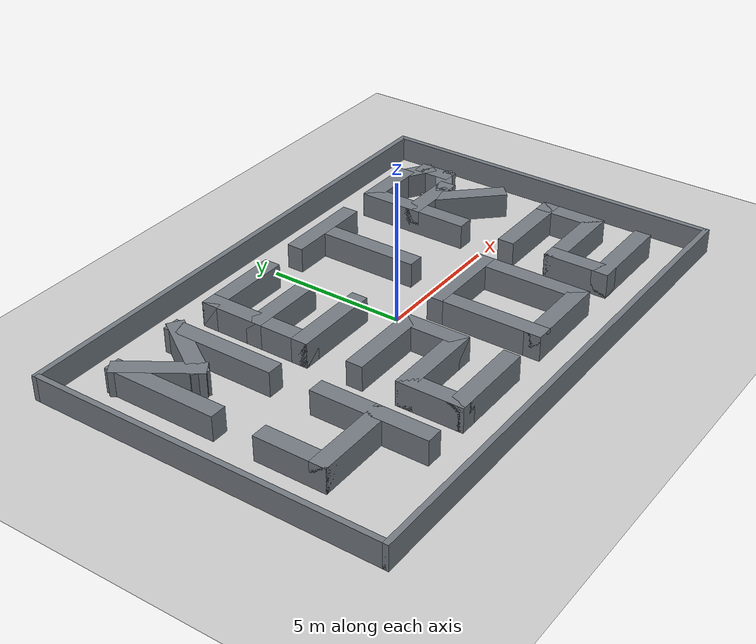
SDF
<?xml version='1.0' encoding='utf-8'?>
<sdf version="1.7">
  <world name="default">
    <light name="sun" type="directional">
      <cast_shadows>1</cast_shadows>
      <pose>0 0 10 0 -0 0</pose>
      <diffuse>0.8 0.8 0.8 1</diffuse>
      <specular>0.2 0.2 0.2 1</specular>
      <attenuation>
        <range>1000</range>
        <constant>0.9</constant>
        <linear>0.01</linear>
        <quadratic>0.001</quadratic>
      </attenuation>
      <direction>-0.5 0.1 -0.9</direction>
      <spot>
        <inner_angle>0</inner_angle>
        <outer_angle>0</outer_angle>
        <falloff>0</falloff>
      </spot>
    </light>
    <model name="ground_plane">
      <static>1</static>
      <link name="link">
        <collision name="collision">
          <geometry>
            <plane>
              <normal>0 0 1</normal>
              <size>100 100</size>
            </plane>
          </geometry>
          <surface>
            <contact>
              <collide_bitmask>65535</collide_bitmask>
              <ode />
            </contact>
            <friction>
              <ode>
                <mu>100</mu>
                <mu2>50</mu2>
              </ode>
              <torsional>
                <ode />
              </torsional>
            </friction>
            <bounce />
          </surface>
          <max_contacts>10</max_contacts>
        </collision>
        <visual name="visual">
          <cast_shadows>0</cast_shadows>
          <geometry>
            <plane>
              <normal>0 0 1</normal>
              <size>100 100</size>
            </plane>
          </geometry>
          <material>
            <script>
              <uri>file://media/materials/scripts/gazebo.material</uri>
              <name>Gazebo/Grey</name>
            </script>
          </material>
        </visual>
        <self_collide>0</self_collide>
        <enable_wind>0</enable_wind>
        <kinematic>0</kinematic>
      </link>
    </model>
    <gravity>0 0 -9.8</gravity>
    <magnetic_field>6e-06 2.3e-05 -4.2e-05</magnetic_field>
    <atmosphere type="adiabatic" />
    <physics type="ode">
      <max_step_size>0.001</max_step_size>
      <real_time_factor>1</real_time_factor>
      <real_time_update_rate>1000</real_time_update_rate>
    </physics>
    <scene>
      <ambient>0.4 0.4 0.4 1</ambient>
      <background>0.7 0.7 0.7 1</background>
      <shadows>1</shadows>
    </scene>
    <audio>
      <device>default</device>
    </audio>
    <wind />
    <spherical_coordinates>
      <surface_model>EARTH_WGS84</surface_model>
      <latitude_deg>0</latitude_deg>
      <longitude_deg>0</longitude_deg>
      <elevation>0</elevation>
      <heading_deg>0</heading_deg>
    </spherical_coordinates>
    <gui fullscreen="0">
      <camera name="user_camera">
        <pose>0 0 26 0 1.55 0</pose>
        <view_controller>orbit</view_controller>
        <projection_type>perspective</projection_type>
      </camera>
    </gui>
    <model name="letter_wall_000">
      <static>1</static>
      <pose>-7.900000 2.850000 0.450000 0 0 1.5707963</pose>
      <link name="link">
        <collision name="collision">
          <geometry>
            <box>
              <size>4.200000 0.600000 0.900000</size>
            </box>
          </geometry>
        </collision>
        <visual name="visual">
          <geometry>
            <box>
              <size>4.200000 0.600000 0.900000</size>
            </box>
          </geometry>
          <material><ambient>0.32 0.34 0.38 1</ambient><diffuse>0.45 0.48 0.51 1</diffuse><specular>0.08 0.08 0.08 1</specular></material>
        </visual>
        <self_collide>0</self_collide>
      </link>
    </model>
    <model name="letter_wall_001">
      <static>1</static>
      <pose>-5.300000 2.850000 0.450000 0 0 1.5707963</pose>
      <link name="link">
        <collision name="collision">
          <geometry>
            <box>
              <size>4.200000 0.600000 0.900000</size>
            </box>
          </geometry>
        </collision>
        <visual name="visual">
          <geometry>
            <box>
              <size>4.200000 0.600000 0.900000</size>
            </box>
          </geometry>
          <material><ambient>0.32 0.34 0.38 1</ambient><diffuse>0.45 0.48 0.51 1</diffuse><specular>0.08 0.08 0.08 1</specular></material>
        </visual>
        <self_collide>0</self_collide>
      </link>
    </model>
    <model name="letter_wall_002">
      <static>1</static>
      <pose>-7.250000 3.660000 0.450000 0 0 -0.9898194</pose>
      <link name="link">
        <collision name="collision">
          <geometry>
            <box>
              <size>2.968628 0.600000 0.900000</size>
            </box>
          </geometry>
        </collision>
        <visual name="visual">
          <geometry>
            <box>
              <size>2.968628 0.600000 0.900000</size>
            </box>
          </geometry>
          <material><ambient>0.32 0.34 0.38 1</ambient><diffuse>0.45 0.48 0.51 1</diffuse><specular>0.08 0.08 0.08 1</specular></material>
        </visual>
        <self_collide>0</self_collide>
      </link>
    </model>
    <model name="letter_wall_003">
      <static>1</static>
      <pose>-5.950000 3.660000 0.450000 0 0 -2.1517733</pose>
      <link name="link">
        <collision name="collision">
          <geometry>
            <box>
              <size>2.968628 0.600000 0.900000</size>
            </box>
          </geometry>
        </collision>
        <visual name="visual">
          <geometry>
            <box>
              <size>2.968628 0.600000 0.900000</size>
            </box>
          </geometry>
          <material><ambient>0.32 0.34 0.38 1</ambient><diffuse>0.45 0.48 0.51 1</diffuse><specular>0.08 0.08 0.08 1</specular></material>
        </visual>
        <self_collide>0</self_collide>
      </link>
    </model>
    <model name="letter_wall_004">
      <static>1</static>
      <pose>-3.500000 2.850000 0.450000 0 0 1.5707963</pose>
      <link name="link">
        <collision name="collision">
          <geometry>
            <box>
              <size>4.200000 0.600000 0.900000</size>
            </box>
          </geometry>
        </collision>
        <visual name="visual">
          <geometry>
            <box>
              <size>4.200000 0.600000 0.900000</size>
            </box>
          </geometry>
          <material><ambient>0.32 0.34 0.38 1</ambient><diffuse>0.45 0.48 0.51 1</diffuse><specular>0.08 0.08 0.08 1</specular></material>
        </visual>
        <self_collide>0</self_collide>
      </link>
    </model>
    <model name="letter_wall_005">
      <static>1</static>
      <pose>-2.200000 4.650000 0.450000 0 0 0.0000000</pose>
      <link name="link">
        <collision name="collision">
          <geometry>
            <box>
              <size>3.200000 0.600000 0.900000</size>
            </box>
          </geometry>
        </collision>
        <visual name="visual">
          <geometry>
            <box>
              <size>3.200000 0.600000 0.900000</size>
            </box>
          </geometry>
          <material><ambient>0.32 0.34 0.38 1</ambient><diffuse>0.45 0.48 0.51 1</diffuse><specular>0.08 0.08 0.08 1</specular></material>
        </visual>
        <self_collide>0</self_collide>
      </link>
    </model>
    <model name="letter_wall_006">
      <static>1</static>
      <pose>-2.395000 2.850000 0.450000 0 0 0.0000000</pose>
      <link name="link">
        <collision name="collision">
          <geometry>
            <box>
              <size>2.810000 0.600000 0.900000</size>
            </box>
          </geometry>
        </collision>
        <visual name="visual">
          <geometry>
            <box>
              <size>2.810000 0.600000 0.900000</size>
            </box>
          </geometry>
          <material><ambient>0.32 0.34 0.38 1</ambient><diffuse>0.45 0.48 0.51 1</diffuse><specular>0.08 0.08 0.08 1</specular></material>
        </visual>
        <self_collide>0</self_collide>
      </link>
    </model>
    <model name="letter_wall_007">
      <static>1</static>
      <pose>-2.200000 1.050000 0.450000 0 0 0.0000000</pose>
      <link name="link">
        <collision name="collision">
          <geometry>
            <box>
              <size>3.200000 0.600000 0.900000</size>
            </box>
          </geometry>
        </collision>
        <visual name="visual">
          <geometry>
            <box>
              <size>3.200000 0.600000 0.900000</size>
            </box>
          </geometry>
          <material><ambient>0.32 0.34 0.38 1</ambient><diffuse>0.45 0.48 0.51 1</diffuse><specular>0.08 0.08 0.08 1</specular></material>
        </visual>
        <self_collide>0</self_collide>
      </link>
    </model>
    <model name="letter_wall_008">
      <static>1</static>
      <pose>2.200000 4.650000 0.450000 0 0 0.0000000</pose>
      <link name="link">
        <collision name="collision">
          <geometry>
            <box>
              <size>3.200000 0.600000 0.900000</size>
            </box>
          </geometry>
        </collision>
        <visual name="visual">
          <geometry>
            <box>
              <size>3.200000 0.600000 0.900000</size>
            </box>
          </geometry>
          <material><ambient>0.32 0.34 0.38 1</ambient><diffuse>0.45 0.48 0.51 1</diffuse><specular>0.08 0.08 0.08 1</specular></material>
        </visual>
        <self_collide>0</self_collide>
      </link>
    </model>
    <model name="letter_wall_009">
      <static>1</static>
      <pose>2.200000 2.850000 0.450000 0 0 1.5707963</pose>
      <link name="link">
        <collision name="collision">
          <geometry>
            <box>
              <size>4.200000 0.600000 0.900000</size>
            </box>
          </geometry>
        </collision>
        <visual name="visual">
          <geometry>
            <box>
              <size>4.200000 0.600000 0.900000</size>
            </box>
          </geometry>
          <material><ambient>0.32 0.34 0.38 1</ambient><diffuse>0.45 0.48 0.51 1</diffuse><specular>0.08 0.08 0.08 1</specular></material>
        </visual>
        <self_collide>0</self_collide>
      </link>
    </model>
    <model name="letter_wall_010">
      <static>1</static>
      <pose>5.300000 2.850000 0.450000 0 0 1.5707963</pose>
      <link name="link">
        <collision name="collision">
          <geometry>
            <box>
              <size>4.200000 0.600000 0.900000</size>
            </box>
          </geometry>
        </collision>
        <visual name="visual">
          <geometry>
            <box>
              <size>4.200000 0.600000 0.900000</size>
            </box>
          </geometry>
          <material><ambient>0.32 0.34 0.38 1</ambient><diffuse>0.45 0.48 0.51 1</diffuse><specular>0.08 0.08 0.08 1</specular></material>
        </visual>
        <self_collide>0</self_collide>
      </link>
    </model>
    <model name="letter_wall_011">
      <static>1</static>
      <pose>6.210000 4.650000 0.450000 0 0 0.0000000</pose>
      <link name="link">
        <collision name="collision">
          <geometry>
            <box>
              <size>2.420000 0.600000 0.900000</size>
            </box>
          </geometry>
        </collision>
        <visual name="visual">
          <geometry>
            <box>
              <size>2.420000 0.600000 0.900000</size>
            </box>
          </geometry>
          <material><ambient>0.32 0.34 0.38 1</ambient><diffuse>0.45 0.48 0.51 1</diffuse><specular>0.08 0.08 0.08 1</specular></material>
        </visual>
        <self_collide>0</self_collide>
      </link>
    </model>
    <model name="letter_wall_012">
      <static>1</static>
      <pose>7.510000 4.400000 0.450000 0 0 -0.5700405</pose>
      <link name="link">
        <collision name="collision">
          <geometry>
            <box>
              <size>1.526499 0.600000 0.900000</size>
            </box>
          </geometry>
        </collision>
        <visual name="visual">
          <geometry>
            <box>
              <size>1.526499 0.600000 0.900000</size>
            </box>
          </geometry>
          <material><ambient>0.32 0.34 0.38 1</ambient><diffuse>0.45 0.48 0.51 1</diffuse><specular>0.08 0.08 0.08 1</specular></material>
        </visual>
        <self_collide>0</self_collide>
      </link>
    </model>
    <model name="letter_wall_013">
      <static>1</static>
      <pose>7.900000 3.750000 0.450000 0 0 -1.5707963</pose>
      <link name="link">
        <collision name="collision">
          <geometry>
            <box>
              <size>1.400000 0.600000 0.900000</size>
            </box>
          </geometry>
        </collision>
        <visual name="visual">
          <geometry>
            <box>
              <size>1.400000 0.600000 0.900000</size>
            </box>
          </geometry>
          <material><ambient>0.32 0.34 0.38 1</ambient><diffuse>0.45 0.48 0.51 1</diffuse><specular>0.08 0.08 0.08 1</specular></material>
        </visual>
        <self_collide>0</self_collide>
      </link>
    </model>
    <model name="letter_wall_014">
      <static>1</static>
      <pose>7.510000 3.100000 0.450000 0 0 -2.5715522</pose>
      <link name="link">
        <collision name="collision">
          <geometry>
            <box>
              <size>1.526499 0.600000 0.900000</size>
            </box>
          </geometry>
        </collision>
        <visual name="visual">
          <geometry>
            <box>
              <size>1.526499 0.600000 0.900000</size>
            </box>
          </geometry>
          <material><ambient>0.32 0.34 0.38 1</ambient><diffuse>0.45 0.48 0.51 1</diffuse><specular>0.08 0.08 0.08 1</specular></material>
        </visual>
        <self_collide>0</self_collide>
      </link>
    </model>
    <model name="letter_wall_015">
      <static>1</static>
      <pose>6.210000 2.850000 0.450000 0 0 0.0000000</pose>
      <link name="link">
        <collision name="collision">
          <geometry>
            <box>
              <size>2.420000 0.600000 0.900000</size>
            </box>
          </geometry>
        </collision>
        <visual name="visual">
          <geometry>
            <box>
              <size>2.420000 0.600000 0.900000</size>
            </box>
          </geometry>
          <material><ambient>0.32 0.34 0.38 1</ambient><diffuse>0.45 0.48 0.51 1</diffuse><specular>0.08 0.08 0.08 1</specular></material>
        </visual>
        <self_collide>0</self_collide>
      </link>
    </model>
    <model name="letter_wall_016">
      <static>1</static>
      <pose>7.055000 1.950000 0.450000 0 0 -0.8169064</pose>
      <link name="link">
        <collision name="collision">
          <geometry>
            <box>
              <size>3.069028 0.600000 0.900000</size>
            </box>
          </geometry>
        </collision>
        <visual name="visual">
          <geometry>
            <box>
              <size>3.069028 0.600000 0.900000</size>
            </box>
          </geometry>
          <material><ambient>0.32 0.34 0.38 1</ambient><diffuse>0.45 0.48 0.51 1</diffuse><specular>0.08 0.08 0.08 1</specular></material>
        </visual>
        <self_collide>0</self_collide>
      </link>
    </model>
    <model name="letter_wall_017">
      <static>1</static>
      <pose>-5.300000 -2.850000 0.450000 0 0 1.5707963</pose>
      <link name="link">
        <collision name="collision">
          <geometry>
            <box>
              <size>4.200000 0.600000 0.900000</size>
            </box>
          </geometry>
        </collision>
        <visual name="visual">
          <geometry>
            <box>
              <size>4.200000 0.600000 0.900000</size>
            </box>
          </geometry>
          <material><ambient>0.32 0.34 0.38 1</ambient><diffuse>0.45 0.48 0.51 1</diffuse><specular>0.08 0.08 0.08 1</specular></material>
        </visual>
        <self_collide>0</self_collide>
      </link>
    </model>
    <model name="letter_wall_018">
      <static>1</static>
      <pose>-7.900000 -2.040000 0.450000 0 0 1.5707963</pose>
      <link name="link">
        <collision name="collision">
          <geometry>
            <box>
              <size>2.580000 0.600000 0.900000</size>
            </box>
          </geometry>
        </collision>
        <visual name="visual">
          <geometry>
            <box>
              <size>2.580000 0.600000 0.900000</size>
            </box>
          </geometry>
          <material><ambient>0.32 0.34 0.38 1</ambient><diffuse>0.45 0.48 0.51 1</diffuse><specular>0.08 0.08 0.08 1</specular></material>
        </visual>
        <self_collide>0</self_collide>
      </link>
    </model>
    <model name="letter_wall_019">
      <static>1</static>
      <pose>-6.600000 -3.030000 0.450000 0 0 0.0000000</pose>
      <link name="link">
        <collision name="collision">
          <geometry>
            <box>
              <size>3.200000 0.600000 0.900000</size>
            </box>
          </geometry>
        </collision>
        <visual name="visual">
          <geometry>
            <box>
              <size>3.200000 0.600000 0.900000</size>
            </box>
          </geometry>
          <material><ambient>0.32 0.34 0.38 1</ambient><diffuse>0.45 0.48 0.51 1</diffuse><specular>0.08 0.08 0.08 1</specular></material>
        </visual>
        <self_collide>0</self_collide>
      </link>
    </model>
    <model name="letter_wall_020">
      <static>1</static>
      <pose>-2.200000 -1.050000 0.450000 0 0 0.0000000</pose>
      <link name="link">
        <collision name="collision">
          <geometry>
            <box>
              <size>3.200000 0.600000 0.900000</size>
            </box>
          </geometry>
        </collision>
        <visual name="visual">
          <geometry>
            <box>
              <size>3.200000 0.600000 0.900000</size>
            </box>
          </geometry>
          <material><ambient>0.32 0.34 0.38 1</ambient><diffuse>0.45 0.48 0.51 1</diffuse><specular>0.08 0.08 0.08 1</specular></material>
        </visual>
        <self_collide>0</self_collide>
      </link>
    </model>
    <model name="letter_wall_021">
      <static>1</static>
      <pose>-0.900000 -1.950000 0.450000 0 0 -1.5707963</pose>
      <link name="link">
        <collision name="collision">
          <geometry>
            <box>
              <size>2.400000 0.600000 0.900000</size>
            </box>
          </geometry>
        </collision>
        <visual name="visual">
          <geometry>
            <box>
              <size>2.400000 0.600000 0.900000</size>
            </box>
          </geometry>
          <material><ambient>0.32 0.34 0.38 1</ambient><diffuse>0.45 0.48 0.51 1</diffuse><specular>0.08 0.08 0.08 1</specular></material>
        </visual>
        <self_collide>0</self_collide>
      </link>
    </model>
    <model name="letter_wall_022">
      <static>1</static>
      <pose>-2.200000 -2.850000 0.450000 0 0 3.1415927</pose>
      <link name="link">
        <collision name="collision">
          <geometry>
            <box>
              <size>3.200000 0.600000 0.900000</size>
            </box>
          </geometry>
        </collision>
        <visual name="visual">
          <geometry>
            <box>
              <size>3.200000 0.600000 0.900000</size>
            </box>
          </geometry>
          <material><ambient>0.32 0.34 0.38 1</ambient><diffuse>0.45 0.48 0.51 1</diffuse><specular>0.08 0.08 0.08 1</specular></material>
        </visual>
        <self_collide>0</self_collide>
      </link>
    </model>
    <model name="letter_wall_023">
      <static>1</static>
      <pose>-3.500000 -3.750000 0.450000 0 0 -1.5707963</pose>
      <link name="link">
        <collision name="collision">
          <geometry>
            <box>
              <size>2.400000 0.600000 0.900000</size>
            </box>
          </geometry>
        </collision>
        <visual name="visual">
          <geometry>
            <box>
              <size>2.400000 0.600000 0.900000</size>
            </box>
          </geometry>
          <material><ambient>0.32 0.34 0.38 1</ambient><diffuse>0.45 0.48 0.51 1</diffuse><specular>0.08 0.08 0.08 1</specular></material>
        </visual>
        <self_collide>0</self_collide>
      </link>
    </model>
    <model name="letter_wall_024">
      <static>1</static>
      <pose>-2.200000 -4.650000 0.450000 0 0 0.0000000</pose>
      <link name="link">
        <collision name="collision">
          <geometry>
            <box>
              <size>3.200000 0.600000 0.900000</size>
            </box>
          </geometry>
        </collision>
        <visual name="visual">
          <geometry>
            <box>
              <size>3.200000 0.600000 0.900000</size>
            </box>
          </geometry>
          <material><ambient>0.32 0.34 0.38 1</ambient><diffuse>0.45 0.48 0.51 1</diffuse><specular>0.08 0.08 0.08 1</specular></material>
        </visual>
        <self_collide>0</self_collide>
      </link>
    </model>
    <model name="letter_wall_025">
      <static>1</static>
      <pose>0.900000 -2.850000 0.450000 0 0 1.5707963</pose>
      <link name="link">
        <collision name="collision">
          <geometry>
            <box>
              <size>4.200000 0.600000 0.900000</size>
            </box>
          </geometry>
        </collision>
        <visual name="visual">
          <geometry>
            <box>
              <size>4.200000 0.600000 0.900000</size>
            </box>
          </geometry>
          <material><ambient>0.32 0.34 0.38 1</ambient><diffuse>0.45 0.48 0.51 1</diffuse><specular>0.08 0.08 0.08 1</specular></material>
        </visual>
        <self_collide>0</self_collide>
      </link>
    </model>
    <model name="letter_wall_026">
      <static>1</static>
      <pose>2.200000 -1.050000 0.450000 0 0 0.0000000</pose>
      <link name="link">
        <collision name="collision">
          <geometry>
            <box>
              <size>3.200000 0.600000 0.900000</size>
            </box>
          </geometry>
        </collision>
        <visual name="visual">
          <geometry>
            <box>
              <size>3.200000 0.600000 0.900000</size>
            </box>
          </geometry>
          <material><ambient>0.32 0.34 0.38 1</ambient><diffuse>0.45 0.48 0.51 1</diffuse><specular>0.08 0.08 0.08 1</specular></material>
        </visual>
        <self_collide>0</self_collide>
      </link>
    </model>
    <model name="letter_wall_027">
      <static>1</static>
      <pose>3.500000 -2.850000 0.450000 0 0 -1.5707963</pose>
      <link name="link">
        <collision name="collision">
          <geometry>
            <box>
              <size>4.200000 0.600000 0.900000</size>
            </box>
          </geometry>
        </collision>
        <visual name="visual">
          <geometry>
            <box>
              <size>4.200000 0.600000 0.900000</size>
            </box>
          </geometry>
          <material><ambient>0.32 0.34 0.38 1</ambient><diffuse>0.45 0.48 0.51 1</diffuse><specular>0.08 0.08 0.08 1</specular></material>
        </visual>
        <self_collide>0</self_collide>
      </link>
    </model>
    <model name="letter_wall_028">
      <static>1</static>
      <pose>2.200000 -4.650000 0.450000 0 0 3.1415927</pose>
      <link name="link">
        <collision name="collision">
          <geometry>
            <box>
              <size>3.200000 0.600000 0.900000</size>
            </box>
          </geometry>
        </collision>
        <visual name="visual">
          <geometry>
            <box>
              <size>3.200000 0.600000 0.900000</size>
            </box>
          </geometry>
          <material><ambient>0.32 0.34 0.38 1</ambient><diffuse>0.45 0.48 0.51 1</diffuse><specular>0.08 0.08 0.08 1</specular></material>
        </visual>
        <self_collide>0</self_collide>
      </link>
    </model>
    <model name="letter_wall_029">
      <static>1</static>
      <pose>6.600000 -1.050000 0.450000 0 0 0.0000000</pose>
      <link name="link">
        <collision name="collision">
          <geometry>
            <box>
              <size>3.200000 0.600000 0.900000</size>
            </box>
          </geometry>
        </collision>
        <visual name="visual">
          <geometry>
            <box>
              <size>3.200000 0.600000 0.900000</size>
            </box>
          </geometry>
          <material><ambient>0.32 0.34 0.38 1</ambient><diffuse>0.45 0.48 0.51 1</diffuse><specular>0.08 0.08 0.08 1</specular></material>
        </visual>
        <self_collide>0</self_collide>
      </link>
    </model>
    <model name="letter_wall_030">
      <static>1</static>
      <pose>7.900000 -1.950000 0.450000 0 0 -1.5707963</pose>
      <link name="link">
        <collision name="collision">
          <geometry>
            <box>
              <size>2.400000 0.600000 0.900000</size>
            </box>
          </geometry>
        </collision>
        <visual name="visual">
          <geometry>
            <box>
              <size>2.400000 0.600000 0.900000</size>
            </box>
          </geometry>
          <material><ambient>0.32 0.34 0.38 1</ambient><diffuse>0.45 0.48 0.51 1</diffuse><specular>0.08 0.08 0.08 1</specular></material>
        </visual>
        <self_collide>0</self_collide>
      </link>
    </model>
    <model name="letter_wall_031">
      <static>1</static>
      <pose>6.600000 -2.850000 0.450000 0 0 3.1415927</pose>
      <link name="link">
        <collision name="collision">
          <geometry>
            <box>
              <size>3.200000 0.600000 0.900000</size>
            </box>
          </geometry>
        </collision>
        <visual name="visual">
          <geometry>
            <box>
              <size>3.200000 0.600000 0.900000</size>
            </box>
          </geometry>
          <material><ambient>0.32 0.34 0.38 1</ambient><diffuse>0.45 0.48 0.51 1</diffuse><specular>0.08 0.08 0.08 1</specular></material>
        </visual>
        <self_collide>0</self_collide>
      </link>
    </model>
    <model name="letter_wall_032">
      <static>1</static>
      <pose>5.300000 -3.750000 0.450000 0 0 -1.5707963</pose>
      <link name="link">
        <collision name="collision">
          <geometry>
            <box>
              <size>2.400000 0.600000 0.900000</size>
            </box>
          </geometry>
        </collision>
        <visual name="visual">
          <geometry>
            <box>
              <size>2.400000 0.600000 0.900000</size>
            </box>
          </geometry>
          <material><ambient>0.32 0.34 0.38 1</ambient><diffuse>0.45 0.48 0.51 1</diffuse><specular>0.08 0.08 0.08 1</specular></material>
        </visual>
        <self_collide>0</self_collide>
      </link>
    </model>
    <model name="letter_wall_033">
      <static>1</static>
      <pose>6.600000 -4.650000 0.450000 0 0 0.0000000</pose>
      <link name="link">
        <collision name="collision">
          <geometry>
            <box>
              <size>3.200000 0.600000 0.900000</size>
            </box>
          </geometry>
        </collision>
        <visual name="visual">
          <geometry>
            <box>
              <size>3.200000 0.600000 0.900000</size>
            </box>
          </geometry>
          <material><ambient>0.32 0.34 0.38 1</ambient><diffuse>0.45 0.48 0.51 1</diffuse><specular>0.08 0.08 0.08 1</specular></material>
        </visual>
        <self_collide>0</self_collide>
      </link>
    </model>
    <model name="letter_wall_034">
      <static>1</static>
      <pose>0.000000 -6.350000 0.450000 0 0 0.0000000</pose>
      <link name="link">
        <collision name="collision">
          <geometry>
            <box>
              <size>19.400000 0.200000 0.900000</size>
            </box>
          </geometry>
        </collision>
        <visual name="visual">
          <geometry>
            <box>
              <size>19.400000 0.200000 0.900000</size>
            </box>
          </geometry>
          <material><ambient>0.32 0.34 0.38 1</ambient><diffuse>0.45 0.48 0.51 1</diffuse><specular>0.08 0.08 0.08 1</specular></material>
        </visual>
        <self_collide>0</self_collide>
      </link>
    </model>
    <model name="letter_wall_035">
      <static>1</static>
      <pose>9.600000 0.000000 0.450000 0 0 1.5707963</pose>
      <link name="link">
        <collision name="collision">
          <geometry>
            <box>
              <size>12.700000 0.200000 0.900000</size>
            </box>
          </geometry>
        </collision>
        <visual name="visual">
          <geometry>
            <box>
              <size>12.700000 0.200000 0.900000</size>
            </box>
          </geometry>
          <material><ambient>0.32 0.34 0.38 1</ambient><diffuse>0.45 0.48 0.51 1</diffuse><specular>0.08 0.08 0.08 1</specular></material>
        </visual>
        <self_collide>0</self_collide>
      </link>
    </model>
    <model name="letter_wall_036">
      <static>1</static>
      <pose>0.000000 6.350000 0.450000 0 0 3.1415927</pose>
      <link name="link">
        <collision name="collision">
          <geometry>
            <box>
              <size>19.400000 0.200000 0.900000</size>
            </box>
          </geometry>
        </collision>
        <visual name="visual">
          <geometry>
            <box>
              <size>19.400000 0.200000 0.900000</size>
            </box>
          </geometry>
          <material><ambient>0.32 0.34 0.38 1</ambient><diffuse>0.45 0.48 0.51 1</diffuse><specular>0.08 0.08 0.08 1</specular></material>
        </visual>
        <self_collide>0</self_collide>
      </link>
    </model>
    <model name="letter_wall_037">
      <static>1</static>
      <pose>-9.600000 0.000000 0.450000 0 0 -1.5707963</pose>
      <link name="link">
        <collision name="collision">
          <geometry>
            <box>
              <size>12.700000 0.200000 0.900000</size>
            </box>
          </geometry>
        </collision>
        <visual name="visual">
          <geometry>
            <box>
              <size>12.700000 0.200000 0.900000</size>
            </box>
          </geometry>
          <material><ambient>0.32 0.34 0.38 1</ambient><diffuse>0.45 0.48 0.51 1</diffuse><specular>0.08 0.08 0.08 1</specular></material>
        </visual>
        <self_collide>0</self_collide>
      </link>
    </model>
  </world>
</sdf>
